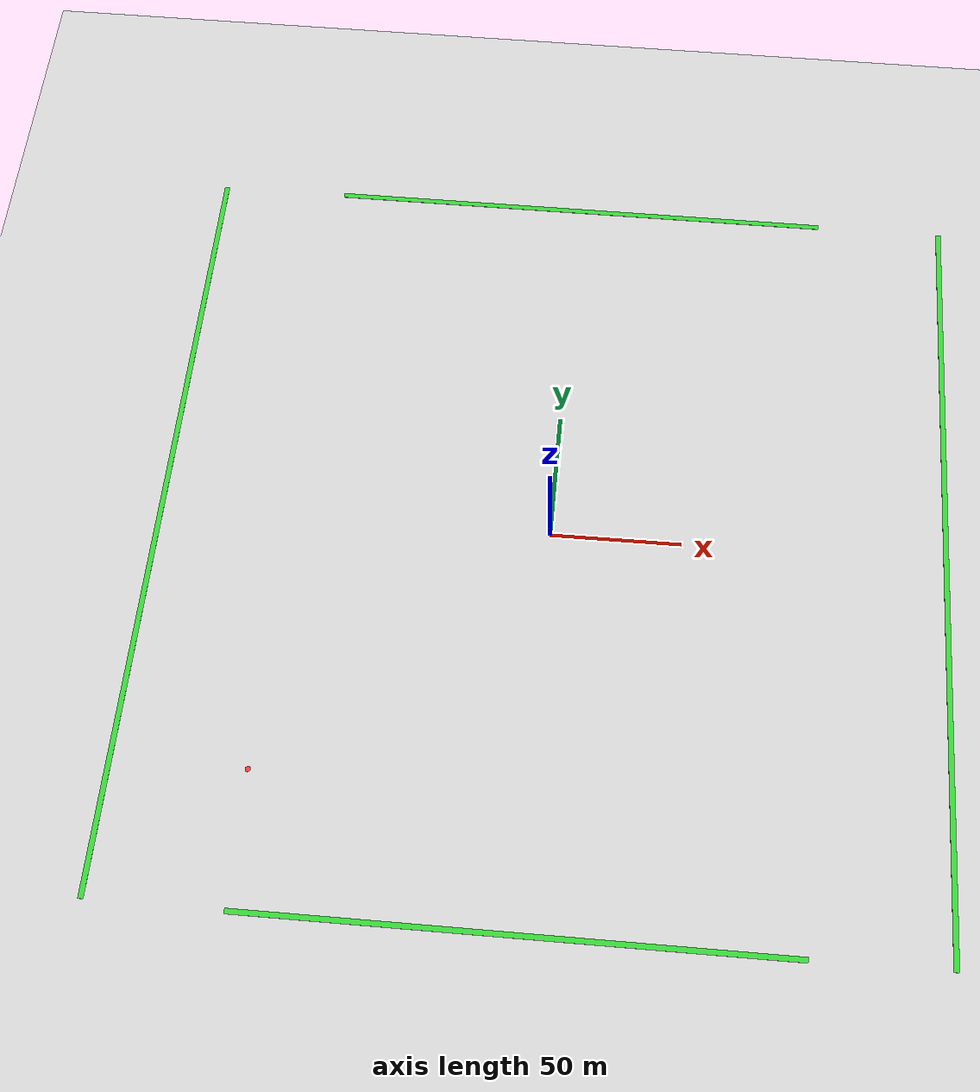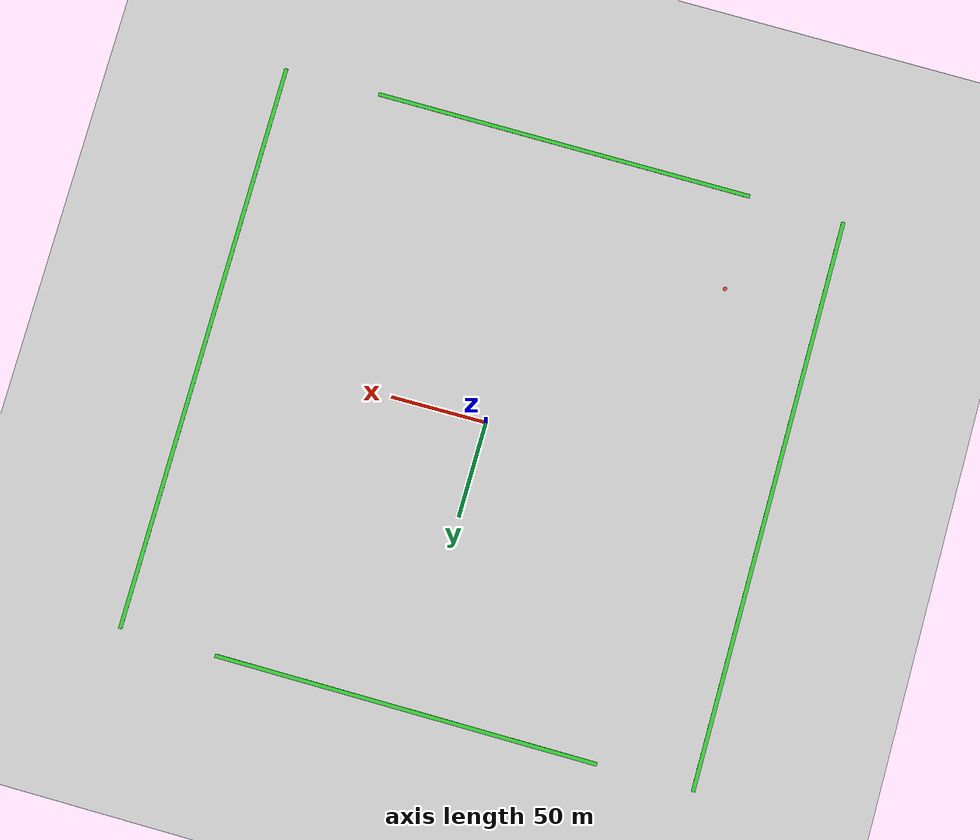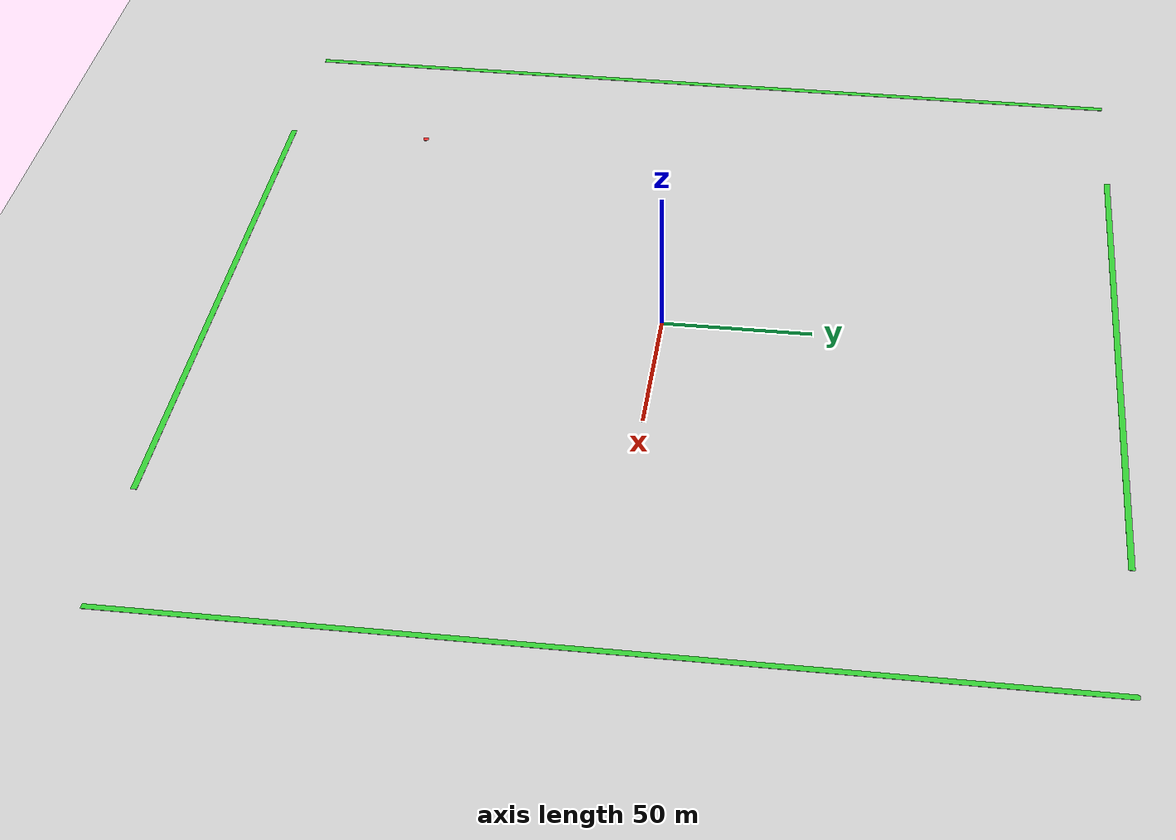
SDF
<?xml version="1.0" ?>
<sdf version="1.9">
  <world name="kimje_satellite">

    <physics name="1ms" type="ignored">
      <max_step_size>0.001</max_step_size>
      <real_time_factor>1.0</real_time_factor>
    </physics>

    <plugin filename="gz-sim-physics-system"
            name="gz::sim::systems::Physics"/>
    <plugin filename="gz-sim-user-commands-system"
            name="gz::sim::systems::UserCommands"/>
    <plugin filename="gz-sim-scene-broadcaster-system"
            name="gz::sim::systems::SceneBroadcaster"/>
    <plugin filename="gz-sim-sensors-system"
            name="gz::sim::systems::Sensors">
      <render_engine>ogre2</render_engine>
    </plugin>
    <plugin filename="gz-sim-imu-system"
            name="gz::sim::systems::Imu"/>
    <plugin filename="gz-sim-air-pressure-system"
            name="gz::sim::systems::AirPressure"/>
    <plugin filename="gz-sim-magnetometer-system"
            name="gz::sim::systems::Magnetometer"/>

    <!-- GPS 원점: 김제 농경지 -->
    <spherical_coordinates>
      <surface_model>EARTH_WGS84</surface_model>
      <latitude_deg>35.765</latitude_deg>
      <longitude_deg>126.895</longitude_deg>
      <elevation>5</elevation>
      <heading_deg>0</heading_deg>
    </spherical_coordinates>

    <!-- 조명 -->
    <light name="sun" type="directional">
      <cast_shadows>true</cast_shadows>
      <pose>0 0 500 0 0 0</pose>
      <diffuse>0.95 0.92 0.85 1</diffuse>
      <specular>0.2 0.2 0.2 1</specular>
      <direction>-0.4 0.1 -0.9</direction>
    </light>
    <light name="sun2" type="directional">
      <cast_shadows>false</cast_shadows>
      <pose>0 0 100 0 0 0</pose>
      <diffuse>0.3 0.35 0.4 1</diffuse>
      <specular>0.0 0.0 0.0 1</specular>
      <direction>0.4 -0.1 -0.9</direction>
    </light>

    <!-- 하늘 -->
    <scene>
      <ambient>0.4 0.45 0.5 1</ambient>
      <background>0.53 0.74 0.95 1</background>
      <sky><clouds><speed>3</speed></clouds></sky>
    </scene>

    <!-- 평탄 지면 (충돌 완벽) -->
    <model name="ground_plane">
      <static>true</static>
      <pose>0 0 0 0 0 0</pose>
      <link name="link">
        <collision name="collision">
          <geometry>
            <plane>
              <normal>0 0 1</normal>
              <size>1000 1000</size>
            </plane>
          </geometry>
          <surface>
            <friction>
              <ode>
                <mu>1.0</mu>
                <mu2>1.0</mu2>
              </ode>
            </friction>
          </surface>
        </collision>
        <visual name="visual">
          <geometry>
            <plane>
              <normal>0 0 1</normal>
              <size>1000 1000</size>
            </plane>
          </geometry>
          <material>
            <pbr>
              <metal>
                <albedo_map>file:///home/user/PX4-Autopilot/Tools/simulation/gz/models/kimje_terrain/textures/satellite.png</albedo_map>
                <normal_map>file:///home/user/PX4-Autopilot/Tools/simulation/gz/models/kimje_terrain/textures/normal.png</normal_map>
              </metal>
            </pbr>
          </material>
        </visual>
      </link>
    </model>

    <!-- ArUco 착륙 패드 -->
    <model name="aruco_landing_pad">
      <static>true</static>
      <pose>50 0 0.01 0 0 0</pose>
      <link name="link">
        <collision name="collision">
          <geometry>
            <box><size>0.8 0.8 0.01</size></box>
          </geometry>
        </collision>
        <visual name="visual">
          <geometry>
            <box><size>0.8 0.8 0.01</size></box>
          </geometry>
          <material>
            <ambient>0.05 0.05 0.05 1</ambient>
            <diffuse>0.05 0.05 0.05 1</diffuse>
          </material>
        </visual>
      </link>
    </model>

    <!-- 방제 시작점 마커 (빨간 원) -->
    <model name="spray_start">
      <static>true</static>
      <pose>-100 -100 0.05 0 0 0</pose>
      <link name="link">
        <visual name="visual">
          <geometry>
            <cylinder><radius>1.0</radius><length>0.1</length></cylinder>
          </geometry>
          <material>
            <ambient>1 0.2 0.2 1</ambient>
            <diffuse>1 0.2 0.2 1</diffuse>
          </material>
        </visual>
      </link>
    </model>

    <!-- 방제 구역 표시 (녹색 테두리) -->
    <model name="field_marker_1">
      <static>true</static>
      <pose>0 150 0.05 0 0 0</pose>
      <link name="link">
        <visual name="visual">
          <geometry><box><size>200 2 0.1</size></box></geometry>
          <material>
            <ambient>0.2 0.8 0.2 1</ambient>
            <diffuse>0.2 0.8 0.2 1</diffuse>
          </material>
        </visual>
      </link>
    </model>
    <model name="field_marker_2">
      <static>true</static>
      <pose>0 -150 0.05 0 0 0</pose>
      <link name="link">
        <visual name="visual">
          <geometry><box><size>200 2 0.1</size></box></geometry>
          <material>
            <ambient>0.2 0.8 0.2 1</ambient>
            <diffuse>0.2 0.8 0.2 1</diffuse>
          </material>
        </visual>
      </link>
    </model>
    <model name="field_marker_3">
      <static>true</static>
      <pose>150 0 0.05 0 0 0</pose>
      <link name="link">
        <visual name="visual">
          <geometry><box><size>2 300 0.1</size></box></geometry>
          <material>
            <ambient>0.2 0.8 0.2 1</ambient>
            <diffuse>0.2 0.8 0.2 1</diffuse>
          </material>
        </visual>
      </link>
    </model>
    <model name="field_marker_4">
      <static>true</static>
      <pose>-150 0 0.05 0 0 0</pose>
      <link name="link">
        <visual name="visual">
          <geometry><box><size>2 300 0.1</size></box></geometry>
          <material>
            <ambient>0.2 0.8 0.2 1</ambient>
            <diffuse>0.2 0.8 0.2 1</diffuse>
          </material>
        </visual>
      </link>
    </model>

  </world>
</sdf>
